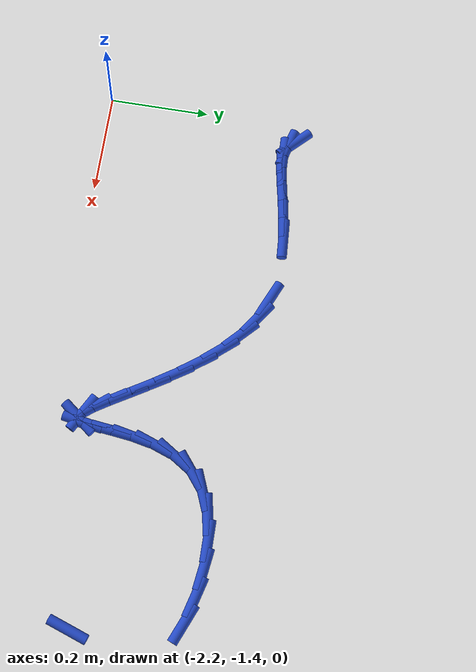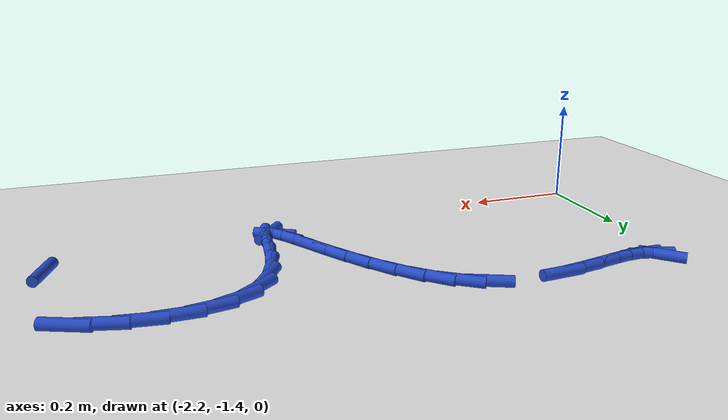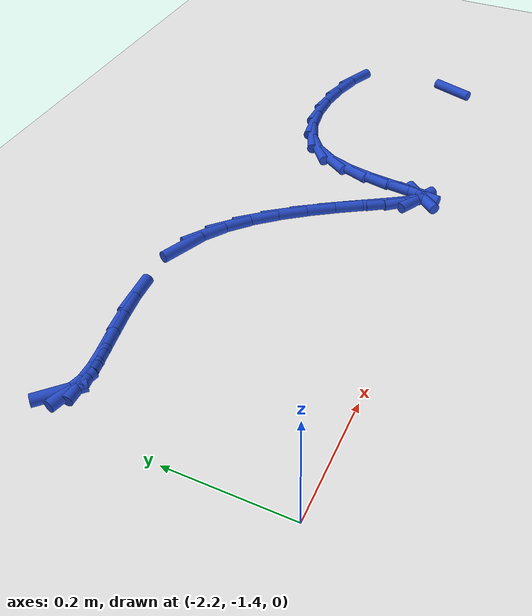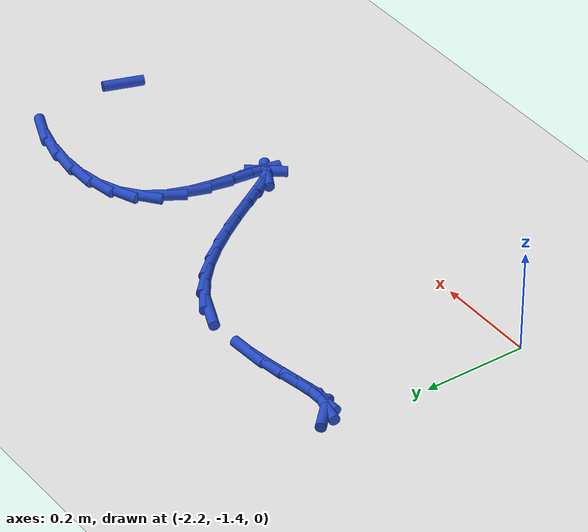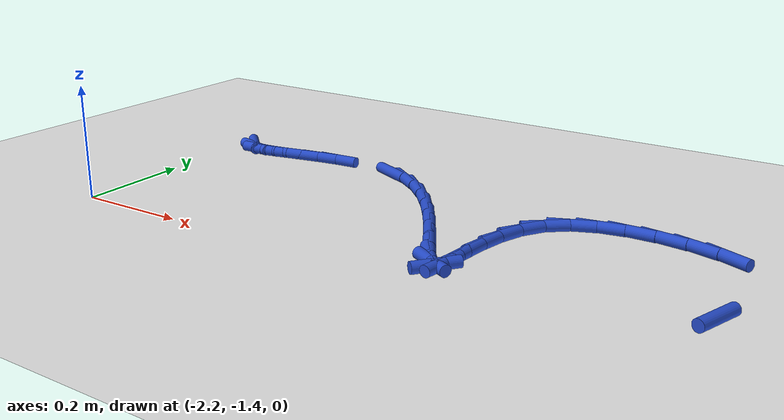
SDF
<sdf version="1.6">
 <world name="default">
  <model name="ground_plane">
   <static>1</static>
   <link name="link">
    <collision name="collision">
     <geometry><plane><normal>0 0 1</normal><size>100 100</size></plane></geometry>
     <surface><friction><ode><mu>100</mu><mu2>50</mu2></ode></friction></surface>
    </collision>
    <visual name="visual">
     <cast_shadows>0</cast_shadows>
     <geometry><plane><normal>0 0 1</normal><size>100 100</size></plane></geometry>
     <material>
      <script><uri>file://media/materials/scripts/gazebo.material</uri><name>Gazebo/WhiteGlow</name></script>
     </material>
    </visual>
   </link>
  </model>
  <model name="line">
   <link name="link_173">
    <pose>-2.1601426468654688 -1.0133191856068016 0.01 0 1.57 -0.7867478016263402</pose>
    <collision name="collision">
     <geometry><cylinder><radius>0.01</radius><length>0.08</length></cylinder></geometry>
    </collision>
    <visual name="visual">
     <material>
      <script><name>Gazebo/Blue</name><uri>file://media/materials/scripts/gazebo.material</uri></script>
     </material>
     <geometry><cylinder><radius>0.01</radius><length>0.08</length></cylinder></geometry>
    </visual>
   </link>
   <link name="link_174">
    <pose>-2.147785615147961 -1.0257096174675024 0.01 0 1.57 -0.2636697978085012</pose>
    <collision name="collision">
     <geometry><cylinder><radius>0.01</radius><length>0.08</length></cylinder></geometry>
    </collision>
    <visual name="visual">
     <material>
      <script><name>Gazebo/Blue</name><uri>file://media/materials/scripts/gazebo.material</uri></script>
     </material>
     <geometry><cylinder><radius>0.01</radius><length>0.08</length></cylinder></geometry>
    </visual>
   </link>
   <link name="link_175">
    <pose>-2.1281687549185637 -1.0310052849969993 0.01 0 1.57 0.023031478065593216</pose>
    <collision name="collision">
     <geometry><cylinder><radius>0.01</radius><length>0.08</length></cylinder></geometry>
    </collision>
    <visual name="visual">
     <material>
      <script><name>Gazebo/Blue</name><uri>file://media/materials/scripts/gazebo.material</uri></script>
     </material>
     <geometry><cylinder><radius>0.01</radius><length>0.08</length></cylinder></geometry>
    </visual>
   </link>
   <link name="link_176">
    <pose>-2.1018653788863775 -1.030399372229804 0.01 0 1.57 0.14556042142349607</pose>
    <collision name="collision">
     <geometry><cylinder><radius>0.01</radius><length>0.08</length></cylinder></geometry>
    </collision>
    <visual name="visual">
     <material>
      <script><name>Gazebo/Blue</name><uri>file://media/materials/scripts/gazebo.material</uri></script>
     </material>
     <geometry><cylinder><radius>0.01</radius><length>0.08</length></cylinder></geometry>
    </visual>
   </link>
   <link name="link_177">
    <pose>-2.06993909793879 -1.0257190673571892 0.01 0 1.57 0.18760584543459927</pose>
    <collision name="collision">
     <geometry><cylinder><radius>0.01</radius><length>0.08</length></cylinder></geometry>
    </collision>
    <visual name="visual">
     <material>
      <script><name>Gazebo/Blue</name><uri>file://media/materials/scripts/gazebo.material</uri></script>
     </material>
     <geometry><cylinder><radius>0.01</radius><length>0.08</length></cylinder></geometry>
    </visual>
   </link>
   <link name="link_178">
    <pose>-2.033454565698743 -1.0187929069308894 0.01 0 1.57 0.1816623226087177</pose>
    <collision name="collision">
     <geometry><cylinder><radius>0.01</radius><length>0.08</length></cylinder></geometry>
    </collision>
    <visual name="visual">
     <material>
      <script><name>Gazebo/Blue</name><uri>file://media/materials/scripts/gazebo.material</uri></script>
     </material>
     <geometry><cylinder><radius>0.01</radius><length>0.08</length></cylinder></geometry>
    </visual>
   </link>
   <link name="link_179">
    <pose>-1.9934764357891817 -1.01144942750264 0.01 0 1.57 0.1389865811937807</pose>
    <collision name="collision">
     <geometry><cylinder><radius>0.01</radius><length>0.08</length></cylinder></geometry>
    </collision>
    <visual name="visual">
     <material>
      <script><name>Gazebo/Blue</name><uri>file://media/materials/scripts/gazebo.material</uri></script>
     </material>
     <geometry><cylinder><radius>0.01</radius><length>0.08</length></cylinder></geometry>
    </visual>
   </link>
   <link name="link_180">
    <pose>-1.9510693618330466 -1.005517165624175 0.01 0 1.57 0.061435586718413655</pose>
    <collision name="collision">
     <geometry><cylinder><radius>0.01</radius><length>0.08</length></cylinder></geometry>
    </collision>
    <visual name="visual">
     <material>
      <script><name>Gazebo/Blue</name><uri>file://media/materials/scripts/gazebo.material</uri></script>
     </material>
     <geometry><cylinder><radius>0.01</radius><length>0.08</length></cylinder></geometry>
    </visual>
   </link>
   <link name="link_183">
    <pose>-1.8199210119146514 -1.014473050804837 0.01 0 1.57 -0.4092074968208574</pose>
    <collision name="collision">
     <geometry><cylinder><radius>0.01</radius><length>0.08</length></cylinder></geometry>
    </collision>
    <visual name="visual">
     <material>
      <script><name>Gazebo/Blue</name><uri>file://media/materials/scripts/gazebo.material</uri></script>
     </material>
     <geometry><cylinder><radius>0.01</radius><length>0.08</length></cylinder></geometry>
    </visual>
   </link>
   <link name="link_184">
    <pose>-1.778442585147737 -1.0324618014379927 0.01 0 1.57 -0.6109841519104602</pose>
    <collision name="collision">
     <geometry><cylinder><radius>0.01</radius><length>0.08</length></cylinder></geometry>
    </collision>
    <visual name="visual">
     <material>
      <script><name>Gazebo/Blue</name><uri>file://media/materials/scripts/gazebo.material</uri></script>
     </material>
     <geometry><cylinder><radius>0.01</radius><length>0.08</length></cylinder></geometry>
    </visual>
   </link>
   <link name="link_185">
    <pose>-1.7395586338950366 -1.0596955286521725 0.01 0 1.57 -0.7610398205389008</pose>
    <collision name="collision">
     <geometry><cylinder><radius>0.01</radius><length>0.08</length></cylinder></geometry>
    </collision>
    <visual name="visual">
     <material>
      <script><name>Gazebo/Blue</name><uri>file://media/materials/scripts/gazebo.material</uri></script>
     </material>
     <geometry><cylinder><radius>0.01</radius><length>0.08</length></cylinder></geometry>
    </visual>
   </link>
   <link name="link_186">
    <pose>-1.7034390718048145 -1.094096975999973 0.01 0 1.57 -0.8669577303748399</pose>
    <collision name="collision">
     <geometry><cylinder><radius>0.01</radius><length>0.08</length></cylinder></geometry>
    </collision>
    <visual name="visual">
     <material>
      <script><name>Gazebo/Blue</name><uri>file://media/materials/scripts/gazebo.material</uri></script>
     </material>
     <geometry><cylinder><radius>0.01</radius><length>0.08</length></cylinder></geometry>
    </visual>
   </link>
   <link name="link_187">
    <pose>-1.6701819185278612 -1.1332750494052568 0.01 0 1.57 -0.9409206261347957</pose>
    <collision name="collision">
     <geometry><cylinder><radius>0.01</radius><length>0.08</length></cylinder></geometry>
    </collision>
    <visual name="visual">
     <material>
      <script><name>Gazebo/Blue</name><uri>file://media/materials/scripts/gazebo.material</uri></script>
     </material>
     <geometry><cylinder><radius>0.01</radius><length>0.08</length></cylinder></geometry>
    </visual>
   </link>
   <link name="link_188">
    <pose>-1.6398851937149732 -1.1748386547918817 0.01 0 1.57 -0.9906152279687643</pose>
    <collision name="collision">
     <geometry><cylinder><radius>0.01</radius><length>0.08</length></cylinder></geometry>
    </collision>
    <visual name="visual">
     <material>
      <script><name>Gazebo/Blue</name><uri>file://media/materials/scripts/gazebo.material</uri></script>
     </material>
     <geometry><cylinder><radius>0.01</radius><length>0.08</length></cylinder></geometry>
    </visual>
   </link>
   <link name="link_189">
    <pose>-1.6126469170169426 -1.2163966980837104 0.01 0 1.57 -1.0194656478305277</pose>
    <collision name="collision">
     <geometry><cylinder><radius>0.01</radius><length>0.08</length></cylinder></geometry>
    </collision>
    <visual name="visual">
     <material>
      <script><name>Gazebo/Blue</name><uri>file://media/materials/scripts/gazebo.material</uri></script>
     </material>
     <geometry><cylinder><radius>0.01</radius><length>0.08</length></cylinder></geometry>
    </visual>
   </link>
   <link name="link_190">
    <pose>-1.588565108084564 -1.2555580852046015 0.01 0 1.57 -1.0260427537565828</pose>
    <collision name="collision">
     <geometry><cylinder><radius>0.01</radius><length>0.08</length></cylinder></geometry>
    </collision>
    <visual name="visual">
     <material>
      <script><name>Gazebo/Blue</name><uri>file://media/materials/scripts/gazebo.material</uri></script>
     </material>
     <geometry><cylinder><radius>0.01</radius><length>0.08</length></cylinder></geometry>
    </visual>
   </link>
   <link name="link_191">
    <pose>-1.56773778656863 -1.2899317220784174 0.01 0 1.57 -0.9996553722189708</pose>
    <collision name="collision">
     <geometry><cylinder><radius>0.01</radius><length>0.08</length></cylinder></geometry>
    </collision>
    <visual name="visual">
     <material>
      <script><name>Gazebo/Blue</name><uri>file://media/materials/scripts/gazebo.material</uri></script>
     </material>
     <geometry><cylinder><radius>0.01</radius><length>0.08</length></cylinder></geometry>
    </visual>
   </link>
   <link name="link_192">
    <pose>-1.5502629721199357 -1.3171265146290168 0.01 0 1.57 -0.898676195556774</pose>
    <collision name="collision">
     <geometry><cylinder><radius>0.01</radius><length>0.08</length></cylinder></geometry>
    </collision>
    <visual name="visual">
     <material>
      <script><name>Gazebo/Blue</name><uri>file://media/materials/scripts/gazebo.material</uri></script>
     </material>
     <geometry><cylinder><radius>0.01</radius><length>0.08</length></cylinder></geometry>
    </visual>
   </link>
   <link name="link_193">
    <pose>-1.5362386843892741 -1.3347513687802612 0.01 0 1.57 -0.49564465957340725</pose>
    <collision name="collision">
     <geometry><cylinder><radius>0.01</radius><length>0.08</length></cylinder></geometry>
    </collision>
    <visual name="visual">
     <material>
      <script><name>Gazebo/Blue</name><uri>file://media/materials/scripts/gazebo.material</uri></script>
     </material>
     <geometry><cylinder><radius>0.01</radius><length>0.08</length></cylinder></geometry>
    </visual>
   </link>
   <link name="link_194">
    <pose>-1.5257629430274389 -1.340415190456011 0.01 0 1.57 0.9031884056358435</pose>
    <collision name="collision">
     <geometry><cylinder><radius>0.01</radius><length>0.08</length></cylinder></geometry>
    </collision>
    <visual name="visual">
     <material>
      <script><name>Gazebo/Blue</name><uri>file://media/materials/scripts/gazebo.material</uri></script>
     </material>
     <geometry><cylinder><radius>0.01</radius><length>0.08</length></cylinder></geometry>
    </visual>
   </link>
   <link name="link_195">
    <pose>-1.5189272134642648 -1.331744456299155 0.01 0 1.57 1.4059105275301718</pose>
    <collision name="collision">
     <geometry><cylinder><radius>0.01</radius><length>0.08</length></cylinder></geometry>
    </collision>
    <visual name="visual">
     <material>
      <script><name>Gazebo/Blue</name><uri>file://media/materials/scripts/gazebo.material</uri></script>
     </material>
     <geometry><cylinder><radius>0.01</radius><length>0.08</length></cylinder></geometry>
    </visual>
   </link>
   <link name="link_196">
    <pose>-1.5150493570241819 -1.3084395401345905 0.01 0 1.57 1.4806689446871886</pose>
    <collision name="collision">
     <geometry><cylinder><radius>0.01</radius><length>0.08</length></cylinder></geometry>
    </collision>
    <visual name="visual">
     <material>
      <script><name>Gazebo/Blue</name><uri>file://media/materials/scripts/gazebo.material</uri></script>
     </material>
     <geometry><cylinder><radius>0.01</radius><length>0.08</length></cylinder></geometry>
    </visual>
   </link>
   <link name="link_197">
    <pose>-1.511955133500615 -1.2742008787894612 0.01 0 1.57 1.457792376197222</pose>
    <collision name="collision">
     <geometry><cylinder><radius>0.01</radius><length>0.08</length></cylinder></geometry>
    </collision>
    <visual name="visual">
     <material>
      <script><name>Gazebo/Blue</name><uri>file://media/materials/scripts/gazebo.material</uri></script>
     </material>
     <geometry><cylinder><radius>0.01</radius><length>0.08</length></cylinder></geometry>
    </visual>
   </link>
   <link name="link_198">
    <pose>-1.5073003058137626 -1.2331846409489322 0.01 0 1.57 1.3771022220785383</pose>
    <collision name="collision">
     <geometry><cylinder><radius>0.01</radius><length>0.08</length></cylinder></geometry>
    </collision>
    <visual name="visual">
     <material>
      <script><name>Gazebo/Blue</name><uri>file://media/materials/scripts/gazebo.material</uri></script>
     </material>
     <geometry><cylinder><radius>0.01</radius><length>0.08</length></cylinder></geometry>
    </visual>
   </link>
   <link name="link_199">
    <pose>-1.4987406368838252 -1.189546995298172 0.01 0 1.57 1.2325832591635417</pose>
    <collision name="collision">
     <geometry><cylinder><radius>0.01</radius><length>0.08</length></cylinder></geometry>
    </collision>
    <visual name="visual">
     <material>
      <script><name>Gazebo/Blue</name><uri>file://media/materials/scripts/gazebo.material</uri></script>
     </material>
     <geometry><cylinder><radius>0.01</radius><length>0.08</length></cylinder></geometry>
    </visual>
   </link>
   <link name="link_200">
    <pose>-1.4839318896310019 -1.1474441105223463 0.01 0 1.57 0.9995681213932479</pose>
    <collision name="collision">
     <geometry><cylinder><radius>0.01</radius><length>0.08</length></cylinder></geometry>
    </collision>
    <visual name="visual">
     <material>
      <script><name>Gazebo/Blue</name><uri>file://media/materials/scripts/gazebo.material</uri></script>
     </material>
     <geometry><cylinder><radius>0.01</radius><length>0.08</length></cylinder></geometry>
    </visual>
   </link>
   <link name="link_201">
    <pose>-1.4605298269754925 -1.1110321553066234 0.01 0 1.57 0.6752017246613665</pose>
    <collision name="collision">
     <geometry><cylinder><radius>0.01</radius><length>0.08</length></cylinder></geometry>
    </collision>
    <visual name="visual">
     <material>
      <script><name>Gazebo/Blue</name><uri>file://media/materials/scripts/gazebo.material</uri></script>
     </material>
     <geometry><cylinder><radius>0.01</radius><length>0.08</length></cylinder></geometry>
    </visual>
   </link>
   <link name="link_202">
    <pose>-1.426716159632722 -1.0839556595875643 0.01 0 1.57 0.38517137693340514</pose>
    <collision name="collision">
     <geometry><cylinder><radius>0.01</radius><length>0.08</length></cylinder></geometry>
    </collision>
    <visual name="visual">
     <material>
      <script><name>Gazebo/Blue</name><uri>file://media/materials/scripts/gazebo.material</uri></script>
     </material>
     <geometry><cylinder><radius>0.01</radius><length>0.08</length></cylinder></geometry>
    </visual>
   </link>
   <link name="link_203">
    <pose>-1.3839888768599964 -1.066633098133155 0.01 0 1.57 0.17036005073044544</pose>
    <collision name="collision">
     <geometry><cylinder><radius>0.01</radius><length>0.08</length></cylinder></geometry>
    </collision>
    <visual name="visual">
     <material>
      <script><name>Gazebo/Blue</name><uri>file://media/materials/scripts/gazebo.material</uri></script>
     </material>
     <geometry><cylinder><radius>0.01</radius><length>0.08</length></cylinder></geometry>
    </visual>
   </link>
   <link name="link_204">
    <pose>-1.3351350836134845 -1.0582289019660516 0.01 0 1.57 0.00621172278158645</pose>
    <collision name="collision">
     <geometry><cylinder><radius>0.01</radius><length>0.08</length></cylinder></geometry>
    </collision>
    <visual name="visual">
     <material>
      <script><name>Gazebo/Blue</name><uri>file://media/materials/scripts/gazebo.material</uri></script>
     </material>
     <geometry><cylinder><radius>0.01</radius><length>0.08</length></cylinder></geometry>
    </visual>
   </link>
   <link name="link_205">
    <pose>-1.2829447591890752 -1.0579047059690805 0.01 0 1.57 -0.1304243243594739</pose>
    <collision name="collision">
     <geometry><cylinder><radius>0.01</radius><length>0.08</length></cylinder></geometry>
    </collision>
    <visual name="visual">
     <material>
      <script><name>Gazebo/Blue</name><uri>file://media/materials/scripts/gazebo.material</uri></script>
     </material>
     <geometry><cylinder><radius>0.01</radius><length>0.08</length></cylinder></geometry>
    </visual>
   </link>
   <link name="link_206">
    <pose>-1.230207882882662 -1.0648221450250697 0.01 0 1.57 -0.25793408444085264</pose>
    <collision name="collision">
     <geometry><cylinder><radius>0.01</radius><length>0.08</length></cylinder></geometry>
    </collision>
    <visual name="visual">
     <material>
      <script><name>Gazebo/Blue</name><uri>file://media/materials/scripts/gazebo.material</uri></script>
     </material>
     <geometry><cylinder><radius>0.01</radius><length>0.08</length></cylinder></geometry>
    </visual>
   </link>
   <link name="link_207">
    <pose>-1.1797144339901313 -1.0781428540168463 0.01 0 1.57 -0.3937397149976085</pose>
    <collision name="collision">
     <geometry><cylinder><radius>0.01</radius><length>0.08</length></cylinder></geometry>
    </collision>
    <visual name="visual">
     <material>
      <script><name>Gazebo/Blue</name><uri>file://media/materials/scripts/gazebo.material</uri></script>
     </material>
     <geometry><cylinder><radius>0.01</radius><length>0.08</length></cylinder></geometry>
    </visual>
   </link>
   <link name="link_216">
    <pose>-1.1348543076387503 -1.2857521697986416 0.01 0 1.57 1.2476539193817273</pose>
    <collision name="collision">
     <geometry><cylinder><radius>0.01</radius><length>0.08</length></cylinder></geometry>
    </collision>
    <visual name="visual">
     <material>
      <script><name>Gazebo/Blue</name><uri>file://media/materials/scripts/gazebo.material</uri></script>
     </material>
     <geometry><cylinder><radius>0.01</radius><length>0.08</length></cylinder></geometry>
    </visual>
   </link>
  </model>
 </world>
</sdf>
